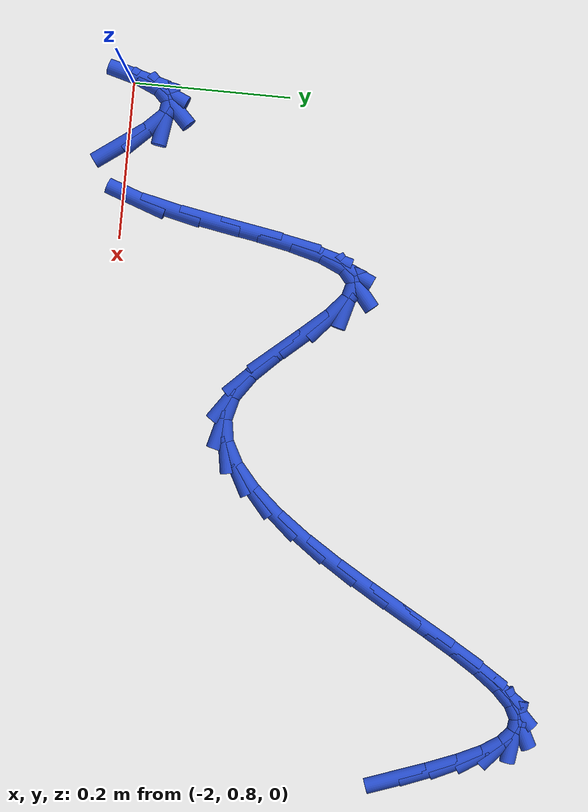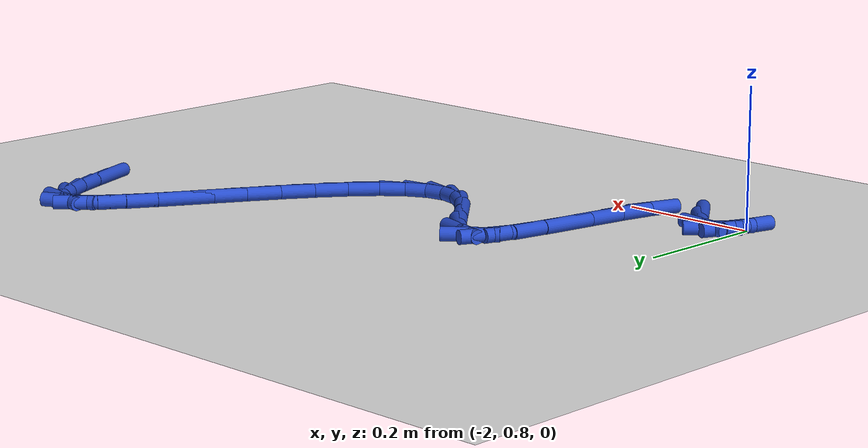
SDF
<sdf version="1.6">
 <world name="default">
  <model name="ground_plane">
   <static>1</static>
   <link name="link">
    <collision name="collision">
     <geometry><plane><normal>0 0 1</normal><size>100 100</size></plane></geometry>
     <surface><friction><ode><mu>100</mu><mu2>50</mu2></ode></friction></surface>
    </collision>
    <visual name="visual">
     <cast_shadows>0</cast_shadows>
     <geometry><plane><normal>0 0 1</normal><size>100 100</size></plane></geometry>
     <material>
      <script><uri>file://media/materials/scripts/gazebo.material</uri><name>Gazebo/WhiteGlow</name></script>
     </material>
    </visual>
   </link>
  </model>
  <model name="line">
   <link name="link_61">
    <pose>-1.1519974014113905 1.2148152413149078 0.01 0 1.57 -1.2284159394660012</pose>
    <collision name="collision">
     <geometry><cylinder><radius>0.01</radius><length>0.08</length></cylinder></geometry>
    </collision>
    <visual name="visual">
     <material>
      <script><name>Gazebo/Blue</name><uri>file://media/materials/scripts/gazebo.material</uri></script>
     </material>
     <geometry><cylinder><radius>0.01</radius><length>0.08</length></cylinder></geometry>
    </visual>
   </link>
   <link name="link_62">
    <pose>-1.1663962603767635 1.2552141095458424 0.01 0 1.57 -1.1991208123888741</pose>
    <collision name="collision">
     <geometry><cylinder><radius>0.01</radius><length>0.08</length></cylinder></geometry>
    </collision>
    <visual name="visual">
     <material>
      <script><name>Gazebo/Blue</name><uri>file://media/materials/scripts/gazebo.material</uri></script>
     </material>
     <geometry><cylinder><radius>0.01</radius><length>0.08</length></cylinder></geometry>
    </visual>
   </link>
   <link name="link_63">
    <pose>-1.1805739179260528 1.2915864769525942 0.01 0 1.57 -1.1327968194230476</pose>
    <collision name="collision">
     <geometry><cylinder><radius>0.01</radius><length>0.08</length></cylinder></geometry>
    </collision>
    <visual name="visual">
     <material>
      <script><name>Gazebo/Blue</name><uri>file://media/materials/scripts/gazebo.material</uri></script>
     </material>
     <geometry><cylinder><radius>0.01</radius><length>0.08</length></cylinder></geometry>
    </visual>
   </link>
   <link name="link_64">
    <pose>-1.1948779092134438 1.3221284406180733 0.01 0 1.57 -0.9978694349605622</pose>
    <collision name="collision">
     <geometry><cylinder><radius>0.01</radius><length>0.08</length></cylinder></geometry>
    </collision>
    <visual name="visual">
     <material>
      <script><name>Gazebo/Blue</name><uri>file://media/materials/scripts/gazebo.material</uri></script>
     </material>
     <geometry><cylinder><radius>0.01</radius><length>0.08</length></cylinder></geometry>
    </visual>
   </link>
   <link name="link_65">
    <pose>-1.209655769393123 1.345036097625191 0.01 0 1.57 -0.712260491637571</pose>
    <collision name="collision">
     <geometry><cylinder><radius>0.01</radius><length>0.08</length></cylinder></geometry>
    </collision>
    <visual name="visual">
     <material>
      <script><name>Gazebo/Blue</name><uri>file://media/materials/scripts/gazebo.material</uri></script>
     </material>
     <geometry><cylinder><radius>0.01</radius><length>0.08</length></cylinder></geometry>
    </visual>
   </link>
   <link name="link_66">
    <pose>-1.2252550336192776 1.3585055450568584 0.01 0 1.57 -0.13491293261273546</pose>
    <collision name="collision">
     <geometry><cylinder><radius>0.01</radius><length>0.08</length></cylinder></geometry>
    </collision>
    <visual name="visual">
     <material>
      <script><name>Gazebo/Blue</name><uri>file://media/materials/scripts/gazebo.material</uri></script>
     </material>
     <geometry><cylinder><radius>0.01</radius><length>0.08</length></cylinder></geometry>
    </visual>
   </link>
   <link name="link_67">
    <pose>-1.2420175108924987 1.3607808414053937 0.01 0 1.57 0.4681121038624852</pose>
    <collision name="collision">
     <geometry><cylinder><radius>0.01</radius><length>0.08</length></cylinder></geometry>
    </collision>
    <visual name="visual">
     <material>
      <script><name>Gazebo/Blue</name><uri>file://media/materials/scripts/gazebo.material</uri></script>
     </material>
     <geometry><cylinder><radius>0.01</radius><length>0.08</length></cylinder></geometry>
    </visual>
   </link>
   <link name="link_68">
    <pose>-1.2601021859775083 1.3516373537249804 0.01 0 1.57 0.7755436263474716</pose>
    <collision name="collision">
     <geometry><cylinder><radius>0.01</radius><length>0.08</length></cylinder></geometry>
    </collision>
    <visual name="visual">
     <material>
      <script><name>Gazebo/Blue</name><uri>file://media/materials/scripts/gazebo.material</uri></script>
     </material>
     <geometry><cylinder><radius>0.01</radius><length>0.08</length></cylinder></geometry>
    </visual>
   </link>
   <link name="link_69">
    <pose>-1.2794512970190983 1.332665886466671 0.01 0 1.57 0.9222210425917697</pose>
    <collision name="collision">
     <geometry><cylinder><radius>0.01</radius><length>0.08</length></cylinder></geometry>
    </collision>
    <visual name="visual">
     <material>
      <script><name>Gazebo/Blue</name><uri>file://media/materials/scripts/gazebo.material</uri></script>
     </material>
     <geometry><cylinder><radius>0.01</radius><length>0.08</length></cylinder></geometry>
    </visual>
   </link>
   <link name="link_70">
    <pose>-1.2999945098607277 1.3055625478044337 0.01 0 1.57 0.9972230381803511</pose>
    <collision name="collision">
     <geometry><cylinder><radius>0.01</radius><length>0.08</length></cylinder></geometry>
    </collision>
    <visual name="visual">
     <material>
      <script><name>Gazebo/Blue</name><uri>file://media/materials/scripts/gazebo.material</uri></script>
     </material>
     <geometry><cylinder><radius>0.01</radius><length>0.08</length></cylinder></geometry>
    </visual>
   </link>
   <link name="link_71">
    <pose>-1.321661490345853 1.2720234459122393 0.01 0 1.57 1.0351318555374092</pose>
    <collision name="collision">
     <geometry><cylinder><radius>0.01</radius><length>0.08</length></cylinder></geometry>
    </collision>
    <visual name="visual">
     <material>
      <script><name>Gazebo/Blue</name><uri>file://media/materials/scripts/gazebo.material</uri></script>
     </material>
     <geometry><cylinder><radius>0.01</radius><length>0.08</length></cylinder></geometry>
    </visual>
   </link>
   <link name="link_72">
    <pose>-1.3443819043179324 1.2337446889640573 0.01 0 1.57 1.0499958867244734</pose>
    <collision name="collision">
     <geometry><cylinder><radius>0.01</radius><length>0.08</length></cylinder></geometry>
    </collision>
    <visual name="visual">
     <material>
      <script><name>Gazebo/Blue</name><uri>file://media/materials/scripts/gazebo.material</uri></script>
     </material>
     <geometry><cylinder><radius>0.01</radius><length>0.08</length></cylinder></geometry>
    </visual>
   </link>
   <link name="link_73">
    <pose>-1.368085417620423 1.192422385133857 0.01 0 1.57 1.0475334901209297</pose>
    <collision name="collision">
     <geometry><cylinder><radius>0.01</radius><length>0.08</length></cylinder></geometry>
    </collision>
    <visual name="visual">
     <material>
      <script><name>Gazebo/Blue</name><uri>file://media/materials/scripts/gazebo.material</uri></script>
     </material>
     <geometry><cylinder><radius>0.01</radius><length>0.08</length></cylinder></geometry>
    </visual>
   </link>
   <link name="link_74">
    <pose>-1.3927016960967837 1.149752642595607 0.01 0 1.57 1.0292297802257018</pose>
    <collision name="collision">
     <geometry><cylinder><radius>0.01</radius><length>0.08</length></cylinder></geometry>
    </collision>
    <visual name="visual">
     <material>
      <script><name>Gazebo/Blue</name><uri>file://media/materials/scripts/gazebo.material</uri></script>
     </material>
     <geometry><cylinder><radius>0.01</radius><length>0.08</length></cylinder></geometry>
    </visual>
   </link>
   <link name="link_75">
    <pose>-1.418160405590471 1.1074315695232793 0.01 0 1.57 0.9935277240687171</pose>
    <collision name="collision">
     <geometry><cylinder><radius>0.01</radius><length>0.08</length></cylinder></geometry>
    </collision>
    <visual name="visual">
     <material>
      <script><name>Gazebo/Blue</name><uri>file://media/materials/scripts/gazebo.material</uri></script>
     </material>
     <geometry><cylinder><radius>0.01</radius><length>0.08</length></cylinder></geometry>
    </visual>
   </link>
   <link name="link_76">
    <pose>-1.4443912119449431 1.0671552740908419 0.01 0 1.57 0.9355613469447946</pose>
    <collision name="collision">
     <geometry><cylinder><radius>0.01</radius><length>0.08</length></cylinder></geometry>
    </collision>
    <visual name="visual">
     <material>
      <script><name>Gazebo/Blue</name><uri>file://media/materials/scripts/gazebo.material</uri></script>
     </material>
     <geometry><cylinder><radius>0.01</radius><length>0.08</length></cylinder></geometry>
    </visual>
   </link>
   <link name="link_77">
    <pose>-1.4713237810036572 1.0306198644722648 0.01 0 1.57 0.8455755475601437</pose>
    <collision name="collision">
     <geometry><cylinder><radius>0.01</radius><length>0.08</length></cylinder></geometry>
    </collision>
    <visual name="visual">
     <material>
      <script><name>Gazebo/Blue</name><uri>file://media/materials/scripts/gazebo.material</uri></script>
     </material>
     <geometry><cylinder><radius>0.01</radius><length>0.08</length></cylinder></geometry>
    </visual>
   </link>
   <link name="link_78">
    <pose>-1.4988877786100718 0.9995214488415173 0.01 0 1.57 0.7057103649303414</pose>
    <collision name="collision">
     <geometry><cylinder><radius>0.01</radius><length>0.08</length></cylinder></geometry>
    </collision>
    <visual name="visual">
     <material>
      <script><name>Gazebo/Blue</name><uri>file://media/materials/scripts/gazebo.material</uri></script>
     </material>
     <geometry><cylinder><radius>0.01</radius><length>0.08</length></cylinder></geometry>
    </visual>
   </link>
   <link name="link_79">
    <pose>-1.5270128706076438 0.9755561353725697 0.01 0 1.57 0.4865316087695177</pose>
    <collision name="collision">
     <geometry><cylinder><radius>0.01</radius><length>0.08</length></cylinder></geometry>
    </collision>
    <visual name="visual">
     <material>
      <script><name>Gazebo/Blue</name><uri>file://media/materials/scripts/gazebo.material</uri></script>
     </material>
     <geometry><cylinder><radius>0.01</radius><length>0.08</length></cylinder></geometry>
    </visual>
   </link>
   <link name="link_80">
    <pose>-1.5556287228398313 0.9604200322393914 0.01 0 1.57 0.1574790720364575</pose>
    <collision name="collision">
     <geometry><cylinder><radius>0.01</radius><length>0.08</length></cylinder></geometry>
    </collision>
    <visual name="visual">
     <material>
      <script><name>Gazebo/Blue</name><uri>file://media/materials/scripts/gazebo.material</uri></script>
     </material>
     <geometry><cylinder><radius>0.01</radius><length>0.08</length></cylinder></geometry>
    </visual>
   </link>
   <link name="link_81">
    <pose>-1.5846650011500918 0.9558092476159517 0.01 0 1.57 -0.25341750664405466</pose>
    <collision name="collision">
     <geometry><cylinder><radius>0.01</radius><length>0.08</length></cylinder></geometry>
    </collision>
    <visual name="visual">
     <material>
      <script><name>Gazebo/Blue</name><uri>file://media/materials/scripts/gazebo.material</uri></script>
     </material>
     <geometry><cylinder><radius>0.01</radius><length>0.08</length></cylinder></geometry>
    </visual>
   </link>
   <link name="link_82">
    <pose>-1.6140513713818825 0.9634198896762205 0.01 0 1.57 -0.6122858602617444</pose>
    <collision name="collision">
     <geometry><cylinder><radius>0.01</radius><length>0.08</length></cylinder></geometry>
    </collision>
    <visual name="visual">
     <material>
      <script><name>Gazebo/Blue</name><uri>file://media/materials/scripts/gazebo.material</uri></script>
     </material>
     <geometry><cylinder><radius>0.01</radius><length>0.08</length></cylinder></geometry>
    </visual>
   </link>
   <link name="link_83">
    <pose>-1.6436547340356735 0.9842111242656744 0.01 0 1.57 -0.7968918434866407</pose>
    <collision name="collision">
     <geometry><cylinder><radius>0.01</radius><length>0.08</length></cylinder></geometry>
    </collision>
    <visual name="visual">
     <material>
      <script><name>Gazebo/Blue</name><uri>file://media/materials/scripts/gazebo.material</uri></script>
     </material>
     <geometry><cylinder><radius>0.01</radius><length>0.08</length></cylinder></geometry>
    </visual>
   </link>
   <link name="link_84">
    <pose>-1.6729171574557506 1.0141540651696352 0.01 0 1.57 -0.863854955197884</pose>
    <collision name="collision">
     <geometry><cylinder><radius>0.01</radius><length>0.08</length></cylinder></geometry>
    </collision>
    <visual name="visual">
     <material>
      <script><name>Gazebo/Blue</name><uri>file://media/materials/scripts/gazebo.material</uri></script>
     </material>
     <geometry><cylinder><radius>0.01</radius><length>0.08</length></cylinder></geometry>
    </visual>
   </link>
   <link name="link_85">
    <pose>-1.7011045710322492 1.0471517381995648 0.01 0 1.57 -0.8487117316933396</pose>
    <collision name="collision">
     <geometry><cylinder><radius>0.01</radius><length>0.08</length></cylinder></geometry>
    </collision>
    <visual name="visual">
     <material>
      <script><name>Gazebo/Blue</name><uri>file://media/materials/scripts/gazebo.material</uri></script>
     </material>
     <geometry><cylinder><radius>0.01</radius><length>0.08</length></cylinder></geometry>
    </visual>
   </link>
   <link name="link_86">
    <pose>-1.7274823371073071 1.0771005113259342 0.01 0 1.57 -0.7174487408556325</pose>
    <collision name="collision">
     <geometry><cylinder><radius>0.01</radius><length>0.08</length></cylinder></geometry>
    </collision>
    <visual name="visual">
     <material>
      <script><name>Gazebo/Blue</name><uri>file://media/materials/scripts/gazebo.material</uri></script>
     </material>
     <geometry><cylinder><radius>0.01</radius><length>0.08</length></cylinder></geometry>
    </visual>
   </link>
   <link name="link_87">
    <pose>-1.7513158180230595 1.0978967525192163 0.01 0 1.57 -0.26327473330158213</pose>
    <collision name="collision">
     <geometry><cylinder><radius>0.01</radius><length>0.08</length></cylinder></geometry>
    </collision>
    <visual name="visual">
     <material>
      <script><name>Gazebo/Blue</name><uri>file://media/materials/scripts/gazebo.material</uri></script>
     </material>
     <geometry><cylinder><radius>0.01</radius><length>0.08</length></cylinder></geometry>
    </visual>
   </link>
   <link name="link_88">
    <pose>-1.7718703784266927 1.1034368455784749 0.01 0 1.57 0.6916312635057502</pose>
    <collision name="collision">
     <geometry><cylinder><radius>0.01</radius><length>0.08</length></cylinder></geometry>
    </collision>
    <visual name="visual">
     <material>
      <script><name>Gazebo/Blue</name><uri>file://media/materials/scripts/gazebo.material</uri></script>
     </material>
     <geometry><cylinder><radius>0.01</radius><length>0.08</length></cylinder></geometry>
    </visual>
   </link>
   <link name="link_89">
    <pose>-1.7886871928999024 1.0895111399776398 0.01 0 1.57 1.1495705585999736</pose>
    <collision name="collision">
     <geometry><cylinder><radius>0.01</radius><length>0.08</length></cylinder></geometry>
    </collision>
    <visual name="visual">
     <material>
      <script><name>Gazebo/Blue</name><uri>file://media/materials/scripts/gazebo.material</uri></script>
     </material>
     <geometry><cylinder><radius>0.01</radius><length>0.08</length></cylinder></geometry>
    </visual>
   </link>
   <link name="link_90">
    <pose>-1.8023442384420425 1.059029627904575 0.01 0 1.57 1.3102470286061427</pose>
    <collision name="collision">
     <geometry><cylinder><radius>0.01</radius><length>0.08</length></cylinder></geometry>
    </collision>
    <visual name="visual">
     <material>
      <script><name>Gazebo/Blue</name><uri>file://media/materials/scripts/gazebo.material</uri></script>
     </material>
     <geometry><cylinder><radius>0.01</radius><length>0.08</length></cylinder></geometry>
    </visual>
   </link>
   <link name="link_91">
    <pose>-1.8136630721855485 1.0165749476465558 0.01 0 1.57 1.3766216972831664</pose>
    <collision name="collision">
     <geometry><cylinder><radius>0.01</radius><length>0.08</length></cylinder></geometry>
    </collision>
    <visual name="visual">
     <material>
      <script><name>Gazebo/Blue</name><uri>file://media/materials/scripts/gazebo.material</uri></script>
     </material>
     <geometry><cylinder><radius>0.01</radius><length>0.08</length></cylinder></geometry>
    </visual>
   </link>
   <link name="link_92">
    <pose>-1.8234652512628577 0.9667297374908578 0.01 0 1.57 1.3995270173779377</pose>
    <collision name="collision">
     <geometry><cylinder><radius>0.01</radius><length>0.08</length></cylinder></geometry>
    </collision>
    <visual name="visual">
     <material>
      <script><name>Gazebo/Blue</name><uri>file://media/materials/scripts/gazebo.material</uri></script>
     </material>
     <geometry><cylinder><radius>0.01</radius><length>0.08</length></cylinder></geometry>
    </visual>
   </link>
   <link name="link_93">
    <pose>-1.8325723328064065 0.9140766357247554 0.01 0 1.57 1.3912675946774518</pose>
    <collision name="collision">
     <geometry><cylinder><radius>0.01</radius><length>0.08</length></cylinder></geometry>
    </collision>
    <visual name="visual">
     <material>
      <script><name>Gazebo/Blue</name><uri>file://media/materials/scripts/gazebo.material</uri></script>
     </material>
     <geometry><cylinder><radius>0.01</radius><length>0.08</length></cylinder></geometry>
    </visual>
   </link>
   <link name="link_94">
    <pose>-1.8418058739486312 0.8631982806355251 0.01 0 1.57 1.3459712557685477</pose>
    <collision name="collision">
     <geometry><cylinder><radius>0.01</radius><length>0.08</length></cylinder></geometry>
    </collision>
    <visual name="visual">
     <material>
      <script><name>Gazebo/Blue</name><uri>file://media/materials/scripts/gazebo.material</uri></script>
     </material>
     <geometry><cylinder><radius>0.01</radius><length>0.08</length></cylinder></geometry>
    </visual>
   </link>
   <link name="link_95">
    <pose>-1.851987431821968 0.8186773105104419 0.01 0 1.57 1.2288837321542125</pose>
    <collision name="collision">
     <geometry><cylinder><radius>0.01</radius><length>0.08</length></cylinder></geometry>
    </collision>
    <visual name="visual">
     <material>
      <script><name>Gazebo/Blue</name><uri>file://media/materials/scripts/gazebo.material</uri></script>
     </material>
     <geometry><cylinder><radius>0.01</radius><length>0.08</length></cylinder></geometry>
    </visual>
   </link>
   <link name="link_99">
    <pose>-1.9180705706299 0.7927465885867103 0.01 0 1.57 -0.9444646915819295</pose>
    <collision name="collision">
     <geometry><cylinder><radius>0.01</radius><length>0.08</length></cylinder></geometry>
    </collision>
    <visual name="visual">
     <material>
      <script><name>Gazebo/Blue</name><uri>file://media/materials/scripts/gazebo.material</uri></script>
     </material>
     <geometry><cylinder><radius>0.01</radius><length>0.08</length></cylinder></geometry>
    </visual>
   </link>
   <link name="link_100">
    <pose>-1.940906450540544 0.8243091685554468 0.01 0 1.57 -0.7995409919296418</pose>
    <collision name="collision">
     <geometry><cylinder><radius>0.01</radius><length>0.08</length></cylinder></geometry>
    </collision>
    <visual name="visual">
     <material>
      <script><name>Gazebo/Blue</name><uri>file://media/materials/scripts/gazebo.material</uri></script>
     </material>
     <geometry><cylinder><radius>0.01</radius><length>0.08</length></cylinder></geometry>
    </visual>
   </link>
   <link name="link_101">
    <pose>-1.9616764952581485 0.8456751759686302 0.01 0 1.57 -0.1486984555540658</pose>
    <collision name="collision">
     <geometry><cylinder><radius>0.01</radius><length>0.08</length></cylinder></geometry>
    </collision>
    <visual name="visual">
     <material>
      <script><name>Gazebo/Blue</name><uri>file://media/materials/scripts/gazebo.material</uri></script>
     </material>
     <geometry><cylinder><radius>0.01</radius><length>0.08</length></cylinder></geometry>
    </visual>
   </link>
   <link name="link_102">
    <pose>-1.9789089813702403 0.8482566748507379 0.01 0 1.57 0.7721833318407554</pose>
    <collision name="collision">
     <geometry><cylinder><radius>0.01</radius><length>0.08</length></cylinder></geometry>
    </collision>
    <visual name="visual">
     <material>
      <script><name>Gazebo/Blue</name><uri>file://media/materials/scripts/gazebo.material</uri></script>
     </material>
     <geometry><cylinder><radius>0.01</radius><length>0.08</length></cylinder></geometry>
    </visual>
   </link>
   <link name="link_103">
    <pose>-1.9931870528147042 0.8343510676537846 0.01 0 1.57 1.1587322378153986</pose>
    <collision name="collision">
     <geometry><cylinder><radius>0.01</radius><length>0.08</length></cylinder></geometry>
    </collision>
    <visual name="visual">
     <material>
      <script><name>Gazebo/Blue</name><uri>file://media/materials/scripts/gazebo.material</uri></script>
     </material>
     <geometry><cylinder><radius>0.01</radius><length>0.08</length></cylinder></geometry>
    </visual>
   </link>
   <link name="link_104">
    <pose>-2.0052064510558885 0.806852224617081 0.01 0 1.57 1.3035997404386308</pose>
    <collision name="collision">
     <geometry><cylinder><radius>0.01</radius><length>0.08</length></cylinder></geometry>
    </collision>
    <visual name="visual">
     <material>
      <script><name>Gazebo/Blue</name><uri>file://media/materials/scripts/gazebo.material</uri></script>
     </material>
     <geometry><cylinder><radius>0.01</radius><length>0.08</length></cylinder></geometry>
    </visual>
   </link>
  </model>
 </world>
</sdf>
